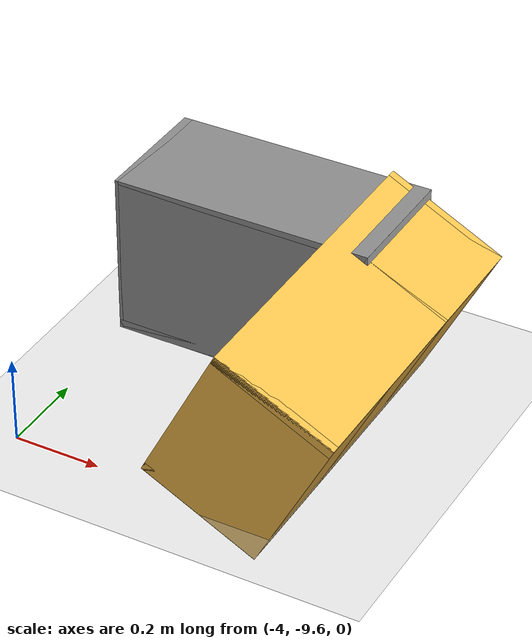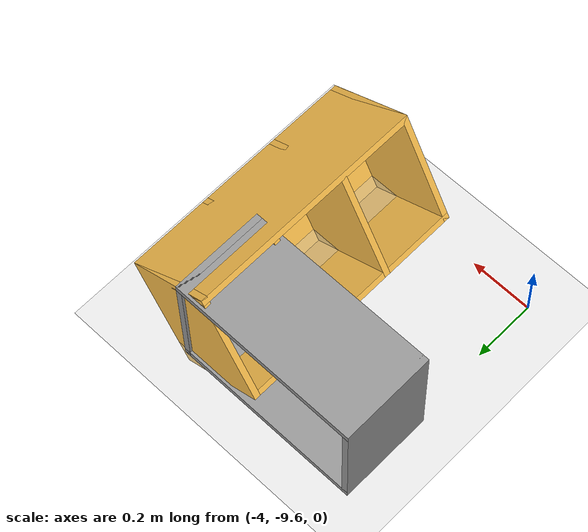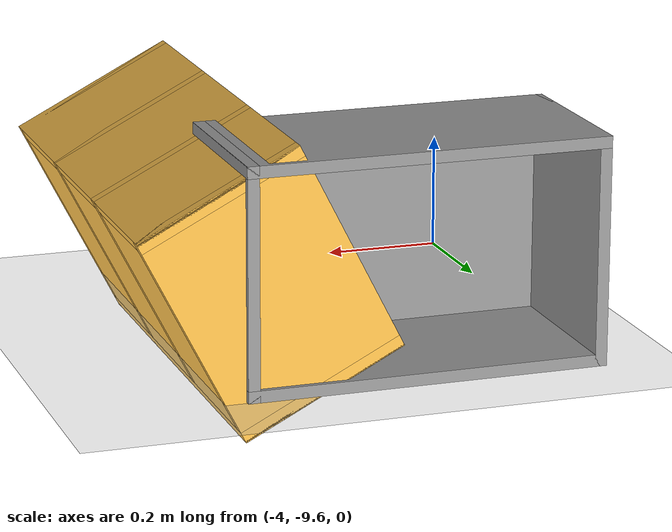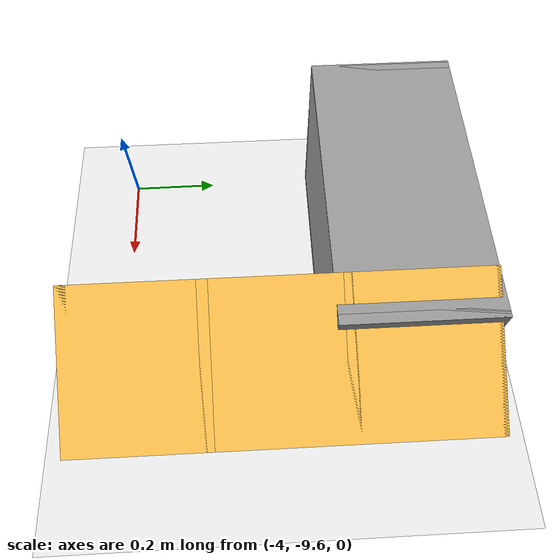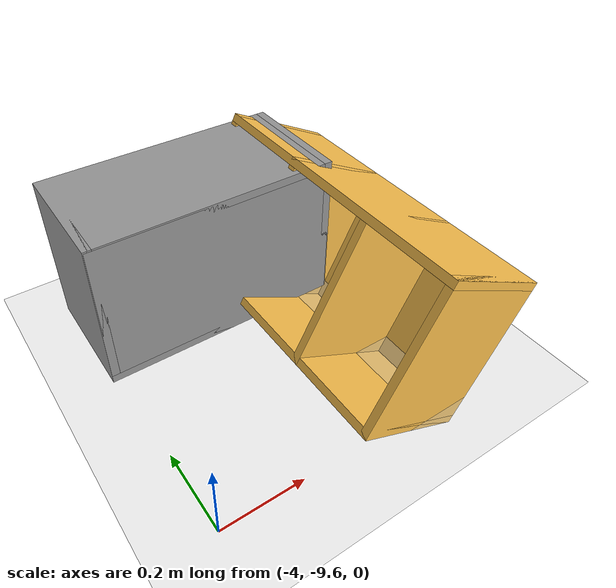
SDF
<sdf version="1.6">
 <world name="default">
  <model name="ground_plane">
   <static>1</static>
   <link name="link">
    <collision name="collision">
     <geometry><plane><normal>0 0 1</normal><size>100 100</size></plane></geometry>
     <surface><friction><ode><mu>100</mu><mu2>50</mu2></ode></friction></surface>
    </collision>
    <visual name="visual">
     <cast_shadows>0</cast_shadows>
     <geometry><plane><normal>0 0 1</normal><size>100 100</size></plane></geometry>
     <material>
      <script><uri>file://media/materials/scripts/gazebo.material</uri><name>Gazebo/Grey</name></script>
     </material>
    </visual>
   </link>
  </model>
  <model name="Wall_Cabinet_15x30_2">
   <pose>-3.54335 -9.24759 0 0 0.473353 0</pose>
   <link name="Wall_0">
    <pose>0 0.374 0.192 0 -0 0</pose>
    <inertial>
     <mass>0.9882</mass>
     <inertia><ixx>0.0072</ixx><iyy>0.0194</iyy><izz>0.0122</izz><ixy>0</ixy><ixz>0</ixz><iyz>0</iyz></inertia>
    </inertial>
    <collision name="Wall_0_Collision"><geometry><box><size>0.296 0.02 0.384</size></box></geometry></collision>
    <visual name="Wall_0_Visual">
     <geometry><box><size>0.296 0.02 0.384</size></box></geometry>
     <material>
      <script><uri>file://media/materials/scripts/gazebo.material</uri><name>Gazebo/Grey</name></script>
      <ambient>1 0.764706 0.305882 1</ambient>
     </material>
    </visual>
   </link>
   <joint name="0_2" type="fixed">
    <pose>0 0 0.192 0 -0 0</pose>
    <parent>Wall_2</parent>
    <child>Wall_0</child>
    <axis>
     <xyz>0 0 1</xyz>
     <use_parent_model_frame>0</use_parent_model_frame>
     <limit><lower>-1e+16</lower><upper>1e+16</upper></limit>
    </axis>
   </joint>
   <joint name="0_4" type="fixed">
    <pose>0 0 -0.192 0 -0 0</pose>
    <parent>Wall_4</parent>
    <child>Wall_0</child>
    <axis>
     <xyz>0 0 1</xyz>
     <use_parent_model_frame>0</use_parent_model_frame>
     <limit><lower>-1e+16</lower><upper>1e+16</upper></limit>
    </axis>
   </joint>
   <joint name="0_15" type="fixed">
    <pose>0.148 0 0 0 -0 0</pose>
    <parent>Wall_15</parent>
    <child>Wall_0</child>
    <axis>
     <xyz>1 0 0</xyz>
     <use_parent_model_frame>0</use_parent_model_frame>
     <limit><lower>-1e+16</lower><upper>1e+16</upper></limit>
    </axis>
   </joint>
   <link name="Wall_11">
    <pose>0 -0.132768 0.192 0 -0 0</pose>
    <inertial>
     <mass>0.9882</mass>
     <inertia><ixx>0.0072</ixx><iyy>0.0194</iyy><izz>0.0122</izz><ixy>0</ixy><ixz>0</ixz><iyz>0</iyz></inertia>
    </inertial>
    <collision name="Wall_11_Collision"><geometry><box><size>0.296 0.02 0.384</size></box></geometry></collision>
    <visual name="Wall_11_Visual">
     <geometry><box><size>0.296 0.02 0.384</size></box></geometry>
     <material>
      <script><uri>file://media/materials/scripts/gazebo.material</uri><name>Gazebo/Grey</name></script>
      <ambient>1 0.764706 0.305882 1</ambient>
     </material>
    </visual>
   </link>
   <joint name="11_2" type="fixed">
    <pose>0 0 0.192 0 -0 0</pose>
    <parent>Wall_2</parent>
    <child>Wall_11</child>
    <axis>
     <xyz>0 0 1</xyz>
     <use_parent_model_frame>0</use_parent_model_frame>
     <limit><lower>-1e+16</lower><upper>1e+16</upper></limit>
    </axis>
   </joint>
   <joint name="11_4" type="fixed">
    <pose>0 0 -0.192 0 -0 0</pose>
    <parent>Wall_4</parent>
    <child>Wall_11</child>
    <axis>
     <xyz>0 0 1</xyz>
     <use_parent_model_frame>0</use_parent_model_frame>
     <limit><lower>-1e+16</lower><upper>1e+16</upper></limit>
    </axis>
   </joint>
   <joint name="11_15" type="fixed">
    <pose>0.148 0 0 0 -0 0</pose>
    <parent>Wall_15</parent>
    <child>Wall_11</child>
    <axis>
     <xyz>1 0 0</xyz>
     <use_parent_model_frame>0</use_parent_model_frame>
     <limit><lower>-1e+16</lower><upper>1e+16</upper></limit>
    </axis>
   </joint>
   <link name="Wall_15">
    <pose>0.138 0 0.19 0 -0 0</pose>
    <inertial>
     <mass>2.5241</mass>
     <inertia><ixx>0.0305</ixx><iyy>0.1229</iyy><izz>0.1532</izz><ixy>0</ixy><ixz>0</ixz><iyz>0</iyz></inertia>
    </inertial>
    <collision name="Wall_15_Collision"><geometry><box><size>0.02 0.764 0.38</size></box></geometry></collision>
    <visual name="Wall_15_Visual">
     <geometry><box><size>0.02 0.764 0.38</size></box></geometry>
     <material>
      <script><uri>file://media/materials/scripts/gazebo.material</uri><name>Gazebo/Grey</name></script>
      <ambient>1 0.764706 0.305882 1</ambient>
     </material>
    </visual>
   </link>
   <joint name="15_2" type="fixed">
    <pose>0 0 0.19 0 -0 0</pose>
    <parent>Wall_2</parent>
    <child>Wall_15</child>
    <axis>
     <xyz>0 0 1</xyz>
     <use_parent_model_frame>0</use_parent_model_frame>
     <limit><lower>-1e+16</lower><upper>1e+16</upper></limit>
    </axis>
   </joint>
   <joint name="15_4" type="fixed">
    <pose>0 0 -0.19 0 -0 0</pose>
    <parent>Wall_4</parent>
    <child>Wall_15</child>
    <axis>
     <xyz>0 0 1</xyz>
     <use_parent_model_frame>0</use_parent_model_frame>
     <limit><lower>-1e+16</lower><upper>1e+16</upper></limit>
    </axis>
   </joint>
   <link name="Wall_2">
    <pose>0 0 0.374 0 -0 0</pose>
    <inertial>
     <mass>1.9765</mass>
     <inertia><ixx>0.0145</ixx><iyy>0.1116</iyy><izz>0.0972</izz><ixy>0</ixy><ixz>0</ixz><iyz>0</iyz></inertia>
    </inertial>
    <collision name="Wall_2_Collision"><geometry><box><size>0.296 0.768 0.02</size></box></geometry></collision>
    <visual name="Wall_2_Visual">
     <geometry><box><size>0.296 0.768 0.02</size></box></geometry>
     <material>
      <script><uri>file://media/materials/scripts/gazebo.material</uri><name>Gazebo/Grey</name></script>
      <ambient>1 0.764706 0.305882 1</ambient>
     </material>
    </visual>
   </link>
   <link name="Wall_4">
    <pose>0 0 0.01 0 -0 0</pose>
    <inertial>
     <mass>1.9765</mass>
     <inertia><ixx>0.0145</ixx><iyy>0.1116</iyy><izz>0.0972</izz><ixy>0</ixy><ixz>0</ixz><iyz>0</iyz></inertia>
    </inertial>
    <collision name="Wall_4_Collision"><geometry><box><size>0.296 0.768 0.02</size></box></geometry></collision>
    <visual name="Wall_4_Visual">
     <geometry><box><size>0.296 0.768 0.02</size></box></geometry>
     <material>
      <script><uri>file://media/materials/scripts/gazebo.material</uri><name>Gazebo/Grey</name></script>
      <ambient>1 0.764706 0.305882 1</ambient>
     </material>
    </visual>
    <pose>-0.181124 0 0 0 0 -1.5708</pose>
   </link>
   <link name="Wall_6">
    <pose>0 -0.374 0.192 0 -0 0</pose>
    <inertial>
     <mass>0.9882</mass>
     <inertia><ixx>0.0072</ixx><iyy>0.0194</iyy><izz>0.0122</izz><ixy>0</ixy><ixz>0</ixz><iyz>0</iyz></inertia>
    </inertial>
    <collision name="Wall_6_Collision"><geometry><box><size>0.296 0.02 0.384</size></box></geometry></collision>
    <visual name="Wall_6_Visual">
     <geometry><box><size>0.296 0.02 0.384</size></box></geometry>
     <material>
      <script><uri>file://media/materials/scripts/gazebo.material</uri><name>Gazebo/Grey</name></script>
      <ambient>1 0.764706 0.305882 1</ambient>
     </material>
    </visual>
   </link>
   <joint name="6_2" type="fixed">
    <pose>0 0 0.192 0 -0 0</pose>
    <parent>Wall_2</parent>
    <child>Wall_6</child>
    <axis>
     <xyz>0 0 1</xyz>
     <use_parent_model_frame>0</use_parent_model_frame>
     <limit><lower>-1e+16</lower><upper>1e+16</upper></limit>
    </axis>
   </joint>
   <joint name="6_4" type="fixed">
    <pose>0 0 -0.192 0 -0 0</pose>
    <parent>Wall_4</parent>
    <child>Wall_6</child>
    <axis>
     <xyz>0 0 1</xyz>
     <use_parent_model_frame>0</use_parent_model_frame>
     <limit><lower>-1e+16</lower><upper>1e+16</upper></limit>
    </axis>
   </joint>
   <joint name="6_15" type="fixed">
    <pose>0.148 0 0 0 -0 0</pose>
    <parent>Wall_15</parent>
    <child>Wall_6</child>
    <axis>
     <xyz>1 0 0</xyz>
     <use_parent_model_frame>0</use_parent_model_frame>
     <limit><lower>-1e+16</lower><upper>1e+16</upper></limit>
    </axis>
   </joint>
   <link name="Wall_8">
    <pose>0 0.120833 0.192 0 -0 0</pose>
    <inertial>
     <mass>0.9882</mass>
     <inertia><ixx>0.0072</ixx><iyy>0.0194</iyy><izz>0.0122</izz><ixy>0</ixy><ixz>0</ixz><iyz>0</iyz></inertia>
    </inertial>
    <collision name="Wall_8_Collision"><geometry><box><size>0.296 0.02 0.384</size></box></geometry></collision>
    <visual name="Wall_8_Visual">
     <geometry><box><size>0.296 0.02 0.384</size></box></geometry>
     <material>
      <script><uri>file://media/materials/scripts/gazebo.material</uri><name>Gazebo/Grey</name></script>
      <ambient>1 0.764706 0.305882 1</ambient>
     </material>
    </visual>
   </link>
   <joint name="8_2" type="fixed">
    <pose>0 0 0.192 0 -0 0</pose>
    <parent>Wall_2</parent>
    <child>Wall_8</child>
    <axis>
     <xyz>0 0 1</xyz>
     <use_parent_model_frame>0</use_parent_model_frame>
     <limit><lower>-1e+16</lower><upper>1e+16</upper></limit>
    </axis>
   </joint>
   <joint name="8_4" type="fixed">
    <pose>0 0 -0.192 0 -0 0</pose>
    <parent>Wall_4</parent>
    <child>Wall_8</child>
    <axis>
     <xyz>0 0 1</xyz>
     <use_parent_model_frame>0</use_parent_model_frame>
     <limit><lower>-1e+16</lower><upper>1e+16</upper></limit>
    </axis>
   </joint>
   <joint name="8_15" type="fixed">
    <pose>0.148 0 0 0 -0 0</pose>
    <parent>Wall_15</parent>
    <child>Wall_8</child>
    <axis>
     <xyz>1 0 0</xyz>
     <use_parent_model_frame>0</use_parent_model_frame>
     <limit><lower>-1e+16</lower><upper>1e+16</upper></limit>
    </axis>
   </joint>
   <static>1</static>
  </model>
  <model name="Wall_Cabinet_24x15W">
   <link name="Wall_41">
    <pose>0 0 0.01 0 -0 0</pose>
    <inertial>
     <mass>1.4983</mass>
     <inertia><ixx>0.011</ixx><iyy>0.0571</iyy><izz>0.0462</izz><ixy>0</ixy><ixz>0</ixz><iyz>0</iyz></inertia>
    </inertial>
    <collision name="Wall_41_Collision"><geometry><box><size>0.608 0.296 0.02</size></box></geometry></collision>
    <visual name="Wall_41_Visual">
     <geometry><box><size>0.608 0.296 0.02</size></box></geometry>
     <material>
      <script><uri>file://media/materials/scripts/gazebo.material</uri><name>Gazebo/Grey</name></script>
      <ambient>1 1 1 1</ambient>
     </material>
    </visual>
    <pose>0.000184 0.181953 0 0 -0 0</pose>
   </link>
   <joint name="41_43" type="fixed">
    <pose>-0.304 0 0 0 -0 0</pose>
    <parent>Wall_43</parent>
    <child>Wall_41</child>
    <axis>
     <xyz>0 0 1</xyz>
     <use_parent_model_frame>0</use_parent_model_frame>
     <limit><lower>-1e+16</lower><upper>1e+16</upper></limit>
    </axis>
   </joint>
   <joint name="41_45" type="fixed">
    <pose>0.304 0 0 0 -0 0</pose>
    <parent>Wall_45</parent>
    <child>Wall_41</child>
    <axis>
     <xyz>0 0 1</xyz>
     <use_parent_model_frame>0</use_parent_model_frame>
     <limit><lower>-1e+16</lower><upper>1e+16</upper></limit>
    </axis>
   </joint>
   <joint name="41_49" type="fixed">
    <pose>0 -0.148 0 0 -0 0</pose>
    <parent>Wall_49</parent>
    <child>Wall_41</child>
    <axis>
     <xyz>0 0 1</xyz>
     <use_parent_model_frame>0</use_parent_model_frame>
     <limit><lower>-1e+16</lower><upper>1e+16</upper></limit>
    </axis>
   </joint>
   <link name="Wall_43">
    <pose>-0.294 0 0.192 0 -0 0</pose>
    <inertial>
     <mass>0.9463</mass>
     <inertia><ixx>0.0069</ixx><iyy>0.0185</iyy><izz>0.0117</izz><ixy>0</ixy><ixz>0</ixz><iyz>0</iyz></inertia>
    </inertial>
    <collision name="Wall_43_Collision"><geometry><box><size>0.02 0.296 0.384</size></box></geometry></collision>
    <visual name="Wall_43_Visual">
     <geometry><box><size>0.02 0.296 0.384</size></box></geometry>
     <material>
      <script><uri>file://media/materials/scripts/gazebo.material</uri><name>Gazebo/Grey</name></script>
      <ambient>1 1 1 1</ambient>
     </material>
    </visual>
   </link>
   <link name="Wall_45">
    <pose>0.294 0 0.192 0 -0 0</pose>
    <inertial>
     <mass>0.9463</mass>
     <inertia><ixx>0.0069</ixx><iyy>0.0185</iyy><izz>0.0117</izz><ixy>0</ixy><ixz>0</ixz><iyz>0</iyz></inertia>
    </inertial>
    <collision name="Wall_45_Collision"><geometry><box><size>0.02 0.296 0.384</size></box></geometry></collision>
    <visual name="Wall_45_Visual">
     <geometry><box><size>0.02 0.296 0.384</size></box></geometry>
     <material>
      <script><uri>file://media/materials/scripts/gazebo.material</uri><name>Gazebo/Grey</name></script>
      <ambient>1 1 1 1</ambient>
     </material>
    </visual>
   </link>
   <link name="Wall_47">
    <pose>0 0 0.374 0 -0 0</pose>
    <inertial>
     <mass>1.4983</mass>
     <inertia><ixx>0.011</ixx><iyy>0.0571</iyy><izz>0.0462</izz><ixy>0</ixy><ixz>0</ixz><iyz>0</iyz></inertia>
    </inertial>
    <collision name="Wall_47_Collision"><geometry><box><size>0.608 0.296 0.02</size></box></geometry></collision>
    <visual name="Wall_47_Visual">
     <geometry><box><size>0.608 0.296 0.02</size></box></geometry>
     <material>
      <script><uri>file://media/materials/scripts/gazebo.material</uri><name>Gazebo/Grey</name></script>
      <ambient>1 1 1 1</ambient>
     </material>
    </visual>
   </link>
   <joint name="47_43" type="fixed">
    <pose>-0.304 0 0 0 -0 0</pose>
    <parent>Wall_43</parent>
    <child>Wall_47</child>
    <axis>
     <xyz>0 0 1</xyz>
     <use_parent_model_frame>0</use_parent_model_frame>
     <limit><lower>-1e+16</lower><upper>1e+16</upper></limit>
    </axis>
   </joint>
   <joint name="47_45" type="fixed">
    <pose>0.304 0 0 0 -0 0</pose>
    <parent>Wall_45</parent>
    <child>Wall_47</child>
    <axis>
     <xyz>0 0 1</xyz>
     <use_parent_model_frame>0</use_parent_model_frame>
     <limit><lower>-1e+16</lower><upper>1e+16</upper></limit>
    </axis>
   </joint>
   <joint name="47_49" type="fixed">
    <pose>0 -0.148 0 0 -0 0</pose>
    <parent>Wall_49</parent>
    <child>Wall_47</child>
    <axis>
     <xyz>0 0 1</xyz>
     <use_parent_model_frame>0</use_parent_model_frame>
     <limit><lower>-1e+16</lower><upper>1e+16</upper></limit>
    </axis>
   </joint>
   <link name="Wall_49">
    <pose>0 -0.138 0.19 0 -0 0</pose>
    <inertial>
     <mass>1.9108</mass>
     <inertia><ixx>0.0231</ixx><iyy>0.0582</iyy><izz>0.0811</izz><ixy>0</ixy><ixz>0</ixz><iyz>0</iyz></inertia>
    </inertial>
    <collision name="Wall_49_Collision"><geometry><box><size>0.604 0.02 0.38</size></box></geometry></collision>
    <visual name="Wall_49_Visual">
     <geometry><box><size>0.604 0.02 0.38</size></box></geometry>
     <material>
      <script><uri>file://media/materials/scripts/gazebo.material</uri><name>Gazebo/Grey</name></script>
      <ambient>1 1 1 1</ambient>
     </material>
    </visual>
   </link>
   <joint name="49_43" type="fixed">
    <pose>-0.302 0 0 0 -0 0</pose>
    <parent>Wall_41</parent>
    <child>Wall_49</child>
    <axis>
     <xyz>0 1 0</xyz>
     <use_parent_model_frame>0</use_parent_model_frame>
     <limit><lower>-1e+16</lower><upper>1e+16</upper></limit>
    </axis>
   </joint>
   <joint name="49_45" type="fixed">
    <pose>0.302 0 0 0 -0 0</pose>
    <parent>Wall_45</parent>
    <child>Wall_49</child>
    <axis>
     <xyz>0 1 0</xyz>
     <use_parent_model_frame>0</use_parent_model_frame>
     <limit><lower>-1e+16</lower><upper>1e+16</upper></limit>
    </axis>
   </joint>
   <static>1</static>
   <pose>-3.71654 -9.00302 0 0 -0 0</pose>
  </model>
 </world>
</sdf>
